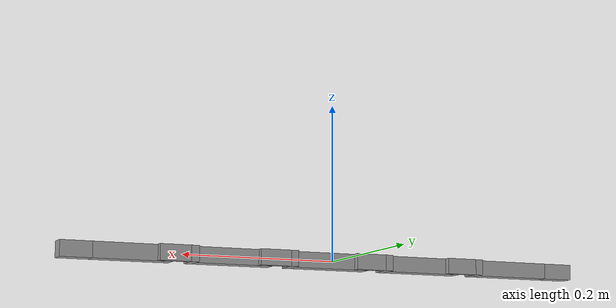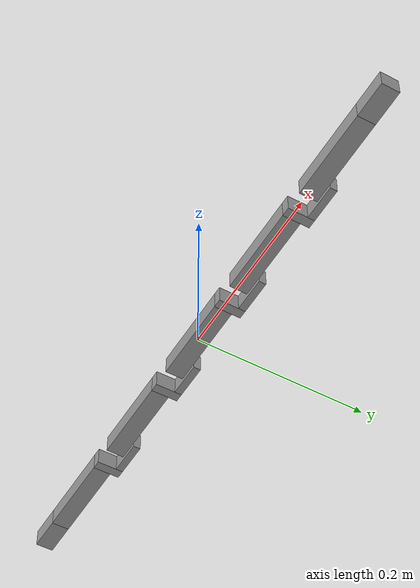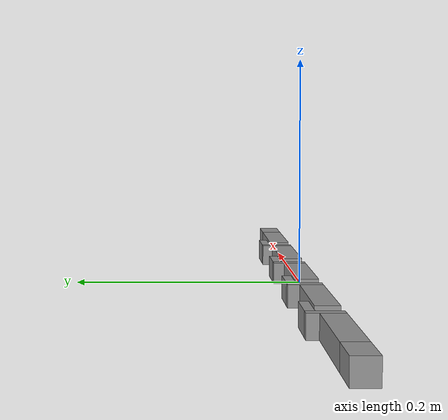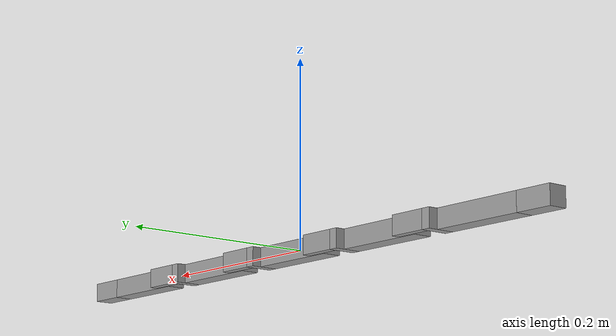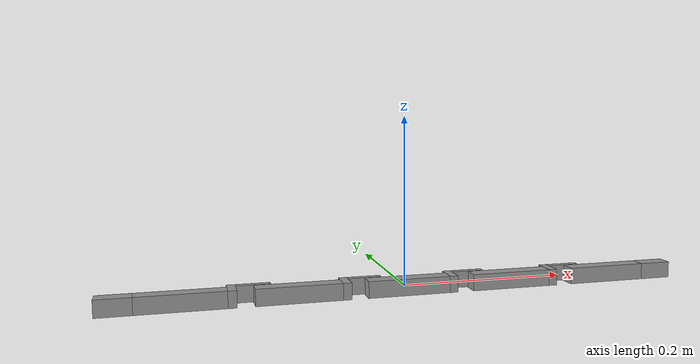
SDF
<?xml version='1.0'?>
<sdf version='1.6'>
  <model name='section_with_jointV3'>
    <link name='link_0'>
      <inertial>
        <mass>1</mass>
        <inertia>
          <ixx>0.166667</ixx>
          <ixy>0</ixy>
          <ixz>0</ixz>
          <iyy>0.166667</iyy>
          <iyz>0</iyz>
          <izz>0.166667</izz>
        </inertia>
        <pose frame=''>0 0 0 0 -0 0</pose>
      </inertial>
      <pose frame=''>-0.326364 -0.001818 0 0 -0 0</pose>
      <gravity>1</gravity>
      <self_collide>0</self_collide>
      <kinematic>0</kinematic>
      <enable_wind>0</enable_wind>
      <visual name='visual'>
        <pose frame=''>0 0 0 0 -0 0</pose>
        <geometry>
          <box>
            <size>0.04 0.02 0.02</size>
          </box>
        </geometry>
        <material>
          <lighting>1</lighting>
          <script>
            <uri>file://media/materials/scripts/gazebo.material</uri>
            <name>Gazebo/Grey</name>
          </script>
          <shader type='pixel'>
            <normal_map>__default__</normal_map>
          </shader>
          <ambient>0.3 0.3 0.3 1</ambient>
          <diffuse>0.7 0.7 0.7 1</diffuse>
          <specular>0.01 0.01 0.01 1</specular>
          <emissive>0 0 0 1</emissive>
        </material>
        <transparency>0</transparency>
        <cast_shadows>1</cast_shadows>
      </visual>
      <collision name='collision'>
        <laser_retro>0</laser_retro>
        <max_contacts>10</max_contacts>
        <pose frame=''>0 0 0 0 -0 0</pose>
        <geometry>
          <box>
            <size>0.04 0.02 0.02</size>
          </box>
        </geometry>
        <surface>
          <friction>
            <ode>
              <mu>1</mu>
              <mu2>1</mu2>
              <fdir1>0 0 0</fdir1>
              <slip1>0</slip1>
              <slip2>0</slip2>
            </ode>
            <torsional>
              <coefficient>1</coefficient>
              <patch_radius>0</patch_radius>
              <surface_radius>0</surface_radius>
              <use_patch_radius>1</use_patch_radius>
              <ode>
                <slip>0</slip>
              </ode>
            </torsional>
          </friction>
          <bounce>
            <restitution_coefficient>0</restitution_coefficient>
            <threshold>1e+06</threshold>
          </bounce>
          <contact>
            <collide_without_contact>0</collide_without_contact>
            <collide_without_contact_bitmask>1</collide_without_contact_bitmask>
            <collide_bitmask>1</collide_bitmask>
            <ode>
              <soft_cfm>0</soft_cfm>
              <soft_erp>0.2</soft_erp>
              <kp>1e+13</kp>
              <kd>1</kd>
              <max_vel>0.01</max_vel>
              <min_depth>0</min_depth>
            </ode>
            <bullet>
              <split_impulse>1</split_impulse>
              <split_impulse_penetration_threshold>-0.01</split_impulse_penetration_threshold>
              <soft_cfm>0</soft_cfm>
              <soft_erp>0.2</soft_erp>
              <kp>1e+13</kp>
              <kd>1</kd>
            </bullet>
          </contact>
        </surface>
      </collision>
    </link>
    <link name='link_1'>
      <inertial>
        <mass>1</mass>
        <inertia>
          <ixx>0.166667</ixx>
          <ixy>0</ixy>
          <ixz>0</ixz>
          <iyy>0.166667</iyy>
          <iyz>0</iyz>
          <izz>0.166667</izz>
        </inertia>
        <pose frame=''>0 0 0 0 -0 0</pose>
      </inertial>
      <pose frame=''>-0.256364 -0.001818 0 0 -0 0</pose>
      <gravity>1</gravity>
      <self_collide>0</self_collide>
      <kinematic>1</kinematic>
      <enable_wind>0</enable_wind>
      <visual name='visual'>
        <pose frame=''>0 0 0 0 -0 0</pose>
        <geometry>
          <box>
            <size>0.1 0.02 0.02</size>
          </box>
        </geometry>
        <material>
          <lighting>1</lighting>
          <script>
            <uri>file://media/materials/scripts/gazebo.material</uri>
            <name>Gazebo/Grey</name>
          </script>
          <shader type='pixel'>
            <normal_map>__default__</normal_map>
          </shader>
          <ambient>0.3 0.3 0.3 1</ambient>
          <diffuse>0.7 0.7 0.7 1</diffuse>
          <specular>0.01 0.01 0.01 1</specular>
          <emissive>0 0 0 1</emissive>
        </material>
        <transparency>0</transparency>
        <cast_shadows>1</cast_shadows>
      </visual>
      <collision name='collision'>
        <laser_retro>0</laser_retro>
        <max_contacts>10</max_contacts>
        <pose frame=''>0 0 0 0 -0 0</pose>
        <geometry>
          <box>
            <size>0.1 0.02 0.02</size>
          </box>
        </geometry>
        <surface>
          <friction>
            <ode>
              <mu>1</mu>
              <mu2>1</mu2>
              <fdir1>0 0 0</fdir1>
              <slip1>0</slip1>
              <slip2>0</slip2>
            </ode>
            <torsional>
              <coefficient>1</coefficient>
              <patch_radius>0</patch_radius>
              <surface_radius>0</surface_radius>
              <use_patch_radius>1</use_patch_radius>
              <ode>
                <slip>0</slip>
              </ode>
            </torsional>
          </friction>
          <bounce>
            <restitution_coefficient>0</restitution_coefficient>
            <threshold>1e+06</threshold>
          </bounce>
          <contact>
            <collide_without_contact>0</collide_without_contact>
            <collide_without_contact_bitmask>1</collide_without_contact_bitmask>
            <collide_bitmask>1</collide_bitmask>
            <ode>
              <soft_cfm>0</soft_cfm>
              <soft_erp>0.2</soft_erp>
              <kp>1e+13</kp>
              <kd>1</kd>
              <max_vel>0.01</max_vel>
              <min_depth>0</min_depth>
            </ode>
            <bullet>
              <split_impulse>1</split_impulse>
              <split_impulse_penetration_threshold>-0.01</split_impulse_penetration_threshold>
              <soft_cfm>0</soft_cfm>
              <soft_erp>0.2</soft_erp>
              <kp>1e+13</kp>
              <kd>1</kd>
            </bullet>
          </contact>
        </surface>
      </collision>
    </link>
    <link name='link_10'>
      <inertial>
        <mass>1</mass>
        <inertia>
          <ixx>0.166667</ixx>
          <ixy>0</ixy>
          <ixz>0</ixz>
          <iyy>0.166667</iyy>
          <iyz>0</iyz>
          <izz>0.166667</izz>
        </inertia>
        <pose frame=''>0 0 0 0 -0 0</pose>
      </inertial>
      <pose frame=''>0.333636 -0.001818 0 0 -0 0</pose>
      <gravity>1</gravity>
      <self_collide>0</self_collide>
      <kinematic>0</kinematic>
      <enable_wind>0</enable_wind>
      <visual name='visual'>
        <pose frame=''>0 0 0 0 -0 0</pose>
        <geometry>
          <box>
            <size>0.04 0.02 0.02</size>
          </box>
        </geometry>
        <material>
          <lighting>1</lighting>
          <script>
            <uri>file://media/materials/scripts/gazebo.material</uri>
            <name>Gazebo/Grey</name>
          </script>
          <shader type='pixel'>
            <normal_map>__default__</normal_map>
          </shader>
          <ambient>0.3 0.3 0.3 1</ambient>
          <diffuse>0.7 0.7 0.7 1</diffuse>
          <specular>0.01 0.01 0.01 1</specular>
          <emissive>0 0 0 1</emissive>
        </material>
        <transparency>0</transparency>
        <cast_shadows>1</cast_shadows>
      </visual>
      <collision name='collision'>
        <laser_retro>0</laser_retro>
        <max_contacts>10</max_contacts>
        <pose frame=''>0 0 0 0 -0 0</pose>
        <geometry>
          <box>
            <size>0.04 0.02 0.02</size>
          </box>
        </geometry>
        <surface>
          <friction>
            <ode>
              <mu>1</mu>
              <mu2>1</mu2>
              <fdir1>0 0 0</fdir1>
              <slip1>0</slip1>
              <slip2>0</slip2>
            </ode>
            <torsional>
              <coefficient>1</coefficient>
              <patch_radius>0</patch_radius>
              <surface_radius>0</surface_radius>
              <use_patch_radius>1</use_patch_radius>
              <ode>
                <slip>0</slip>
              </ode>
            </torsional>
          </friction>
          <bounce>
            <restitution_coefficient>0</restitution_coefficient>
            <threshold>1e+06</threshold>
          </bounce>
          <contact>
            <collide_without_contact>0</collide_without_contact>
            <collide_without_contact_bitmask>1</collide_without_contact_bitmask>
            <collide_bitmask>1</collide_bitmask>
            <ode>
              <soft_cfm>0</soft_cfm>
              <soft_erp>0.2</soft_erp>
              <kp>1e+13</kp>
              <kd>1</kd>
              <max_vel>0.01</max_vel>
              <min_depth>0</min_depth>
            </ode>
            <bullet>
              <split_impulse>1</split_impulse>
              <split_impulse_penetration_threshold>-0.01</split_impulse_penetration_threshold>
              <soft_cfm>0</soft_cfm>
              <soft_erp>0.2</soft_erp>
              <kp>1e+13</kp>
              <kd>1</kd>
            </bullet>
          </contact>
        </surface>
      </collision>
    </link>
    <link name='link_2'>
      <inertial>
        <mass>1</mass>
        <inertia>
          <ixx>0.166667</ixx>
          <ixy>0</ixy>
          <ixz>0</ixz>
          <iyy>0.166667</iyy>
          <iyz>0</iyz>
          <izz>0.166667</izz>
        </inertia>
        <pose frame=''>0 0 0 0 -0 0</pose>
      </inertial>
      <pose frame=''>-0.201364 0.003182 0 0 -0 0</pose>
      <gravity>1</gravity>
      <self_collide>0</self_collide>
      <kinematic>0</kinematic>
      <enable_wind>0</enable_wind>
      <visual name='visual'>
        <pose frame=''>0 0 0 0 -0 0</pose>
        <geometry>
          <box>
            <size>0.01 0.03 0.02</size>
          </box>
        </geometry>
        <material>
          <lighting>1</lighting>
          <script>
            <uri>file://media/materials/scripts/gazebo.material</uri>
            <name>Gazebo/Grey</name>
          </script>
          <shader type='pixel'>
            <normal_map>__default__</normal_map>
          </shader>
          <ambient>0.3 0.3 0.3 1</ambient>
          <diffuse>0.7 0.7 0.7 1</diffuse>
          <specular>0.01 0.01 0.01 1</specular>
          <emissive>0 0 0 1</emissive>
        </material>
        <transparency>0</transparency>
        <cast_shadows>1</cast_shadows>
      </visual>
      <visual name='ModelPreview_2::link_2::visual_1'>
        <pose frame=''>0.025 0.011 0 0 -0 0</pose>
        <geometry>
          <box>
            <size>0.04 0.008 0.02</size>
          </box>
        </geometry>
        <material>
          <lighting>1</lighting>
          <script>
            <uri>file://media/materials/scripts/gazebo.material</uri>
            <name>Gazebo/Grey</name>
          </script>
          <shader type='pixel'>
            <normal_map>__default__</normal_map>
          </shader>
          <ambient>0.3 0.3 0.3 1</ambient>
          <diffuse>0.7 0.7 0.7 1</diffuse>
          <specular>0.01 0.01 0.01 1</specular>
          <emissive>0 0 0 1</emissive>
        </material>
        <transparency>0</transparency>
        <cast_shadows>1</cast_shadows>
      </visual>
      <collision name='collision'>
        <laser_retro>0</laser_retro>
        <max_contacts>10</max_contacts>
        <pose frame=''>0 0 0 0 -0 0</pose>
        <geometry>
          <box>
            <size>0.01 0.03 0.02</size>
          </box>
        </geometry>
        <surface>
          <friction>
            <ode>
              <mu>1</mu>
              <mu2>1</mu2>
              <fdir1>0 0 0</fdir1>
              <slip1>0</slip1>
              <slip2>0</slip2>
            </ode>
            <torsional>
              <coefficient>1</coefficient>
              <patch_radius>0</patch_radius>
              <surface_radius>0</surface_radius>
              <use_patch_radius>1</use_patch_radius>
              <ode>
                <slip>0</slip>
              </ode>
            </torsional>
          </friction>
          <bounce>
            <restitution_coefficient>0</restitution_coefficient>
            <threshold>1e+06</threshold>
          </bounce>
          <contact>
            <collide_without_contact>0</collide_without_contact>
            <collide_without_contact_bitmask>1</collide_without_contact_bitmask>
            <collide_bitmask>1</collide_bitmask>
            <ode>
              <soft_cfm>0</soft_cfm>
              <soft_erp>0.2</soft_erp>
              <kp>1e+13</kp>
              <kd>1</kd>
              <max_vel>0.01</max_vel>
              <min_depth>0</min_depth>
            </ode>
            <bullet>
              <split_impulse>1</split_impulse>
              <split_impulse_penetration_threshold>-0.01</split_impulse_penetration_threshold>
              <soft_cfm>0</soft_cfm>
              <soft_erp>0.2</soft_erp>
              <kp>1e+13</kp>
              <kd>1</kd>
            </bullet>
          </contact>
        </surface>
      </collision>
      <collision name='collision_1'>
        <laser_retro>0</laser_retro>
        <max_contacts>10</max_contacts>
        <pose frame=''>0.025 0.011 0 0 -0 0</pose>
        <geometry>
          <box>
            <size>0.04 0.008 0.02</size>
          </box>
        </geometry>
        <surface>
          <friction>
            <ode>
              <mu>1</mu>
              <mu2>1</mu2>
              <fdir1>0 0 0</fdir1>
              <slip1>0</slip1>
              <slip2>0</slip2>
            </ode>
            <torsional>
              <coefficient>1</coefficient>
              <patch_radius>0</patch_radius>
              <surface_radius>0</surface_radius>
              <use_patch_radius>1</use_patch_radius>
              <ode>
                <slip>0</slip>
              </ode>
            </torsional>
          </friction>
          <bounce>
            <restitution_coefficient>0</restitution_coefficient>
            <threshold>1e+06</threshold>
          </bounce>
          <contact>
            <collide_without_contact>0</collide_without_contact>
            <collide_without_contact_bitmask>1</collide_without_contact_bitmask>
            <collide_bitmask>1</collide_bitmask>
            <ode>
              <soft_cfm>0</soft_cfm>
              <soft_erp>0.2</soft_erp>
              <kp>1e+13</kp>
              <kd>1</kd>
              <max_vel>0.01</max_vel>
              <min_depth>0</min_depth>
            </ode>
            <bullet>
              <split_impulse>1</split_impulse>
              <split_impulse_penetration_threshold>-0.01</split_impulse_penetration_threshold>
              <soft_cfm>0</soft_cfm>
              <soft_erp>0.2</soft_erp>
              <kp>1e+13</kp>
              <kd>1</kd>
            </bullet>
          </contact>
        </surface>
      </collision>
    </link>
    <link name='link_3'>
      <inertial>
        <mass>1</mass>
        <inertia>
          <ixx>0.166667</ixx>
          <ixy>0</ixy>
          <ixz>0</ixz>
          <iyy>0.166667</iyy>
          <iyz>0</iyz>
          <izz>0.166667</izz>
        </inertia>
        <pose frame=''>0 0 0 0 -0 0</pose>
      </inertial>
      <pose frame=''>-0.126364 -0.001818 0 0 -0 0</pose>
      <gravity>1</gravity>
      <self_collide>0</self_collide>
      <kinematic>0</kinematic>
      <enable_wind>0</enable_wind>
      <visual name='visual'>
        <pose frame=''>0 0 0 0 -0 0</pose>
        <geometry>
          <box>
            <size>0.1 0.02 0.02</size>
          </box>
        </geometry>
        <material>
          <lighting>1</lighting>
          <script>
            <uri>file://media/materials/scripts/gazebo.material</uri>
            <name>Gazebo/Grey</name>
          </script>
          <shader type='pixel'>
            <normal_map>__default__</normal_map>
          </shader>
          <ambient>0.3 0.3 0.3 1</ambient>
          <diffuse>0.7 0.7 0.7 1</diffuse>
          <specular>0.01 0.01 0.01 1</specular>
          <emissive>0 0 0 1</emissive>
        </material>
        <transparency>0</transparency>
        <cast_shadows>1</cast_shadows>
      </visual>
      <collision name='collision'>
        <laser_retro>0</laser_retro>
        <max_contacts>10</max_contacts>
        <pose frame=''>0 0 0 0 -0 0</pose>
        <geometry>
          <box>
            <size>0.1 0.02 0.02</size>
          </box>
        </geometry>
        <surface>
          <friction>
            <ode>
              <mu>1</mu>
              <mu2>1</mu2>
              <fdir1>0 0 0</fdir1>
              <slip1>0</slip1>
              <slip2>0</slip2>
            </ode>
            <torsional>
              <coefficient>1</coefficient>
              <patch_radius>0</patch_radius>
              <surface_radius>0</surface_radius>
              <use_patch_radius>1</use_patch_radius>
              <ode>
                <slip>0</slip>
              </ode>
            </torsional>
          </friction>
          <bounce>
            <restitution_coefficient>0</restitution_coefficient>
            <threshold>1e+06</threshold>
          </bounce>
          <contact>
            <collide_without_contact>0</collide_without_contact>
            <collide_without_contact_bitmask>1</collide_without_contact_bitmask>
            <collide_bitmask>1</collide_bitmask>
            <ode>
              <soft_cfm>0</soft_cfm>
              <soft_erp>0.2</soft_erp>
              <kp>1e+13</kp>
              <kd>1</kd>
              <max_vel>0.01</max_vel>
              <min_depth>0</min_depth>
            </ode>
            <bullet>
              <split_impulse>1</split_impulse>
              <split_impulse_penetration_threshold>-0.01</split_impulse_penetration_threshold>
              <soft_cfm>0</soft_cfm>
              <soft_erp>0.2</soft_erp>
              <kp>1e+13</kp>
              <kd>1</kd>
            </bullet>
          </contact>
        </surface>
      </collision>
    </link>
    <link name='link_4'>
      <inertial>
        <mass>1</mass>
        <inertia>
          <ixx>0.166667</ixx>
          <ixy>0</ixy>
          <ixz>0</ixz>
          <iyy>0.166667</iyy>
          <iyz>0</iyz>
          <izz>0.166667</izz>
        </inertia>
        <pose frame=''>0 0 0 0 -0 0</pose>
      </inertial>
      <pose frame=''>-0.071364 0.003182 0 0 -0 0</pose>
      <gravity>1</gravity>
      <self_collide>0</self_collide>
      <kinematic>0</kinematic>
      <enable_wind>0</enable_wind>
      <visual name='visual'>
        <pose frame=''>0 0 0 0 -0 0</pose>
        <geometry>
          <box>
            <size>0.01 0.03 0.02</size>
          </box>
        </geometry>
        <material>
          <lighting>1</lighting>
          <script>
            <uri>file://media/materials/scripts/gazebo.material</uri>
            <name>Gazebo/Grey</name>
          </script>
          <shader type='pixel'>
            <normal_map>__default__</normal_map>
          </shader>
          <ambient>0.3 0.3 0.3 1</ambient>
          <diffuse>0.7 0.7 0.7 1</diffuse>
          <specular>0.01 0.01 0.01 1</specular>
          <emissive>0 0 0 1</emissive>
        </material>
        <transparency>0</transparency>
        <cast_shadows>1</cast_shadows>
      </visual>
      <visual name='ModelPreview_2::link_4::visual_1'>
        <pose frame=''>0.025 0.011 0 0 -0 0</pose>
        <geometry>
          <box>
            <size>0.04 0.008 0.02</size>
          </box>
        </geometry>
        <material>
          <lighting>1</lighting>
          <script>
            <uri>file://media/materials/scripts/gazebo.material</uri>
            <name>Gazebo/Grey</name>
          </script>
          <shader type='pixel'>
            <normal_map>__default__</normal_map>
          </shader>
          <ambient>0.3 0.3 0.3 1</ambient>
          <diffuse>0.7 0.7 0.7 1</diffuse>
          <specular>0.01 0.01 0.01 1</specular>
          <emissive>0 0 0 1</emissive>
        </material>
        <transparency>0</transparency>
        <cast_shadows>1</cast_shadows>
      </visual>
      <collision name='collision'>
        <laser_retro>0</laser_retro>
        <max_contacts>10</max_contacts>
        <pose frame=''>0 0 0 0 -0 0</pose>
        <geometry>
          <box>
            <size>0.01 0.03 0.02</size>
          </box>
        </geometry>
        <surface>
          <friction>
            <ode>
              <mu>1</mu>
              <mu2>1</mu2>
              <fdir1>0 0 0</fdir1>
              <slip1>0</slip1>
              <slip2>0</slip2>
            </ode>
            <torsional>
              <coefficient>1</coefficient>
              <patch_radius>0</patch_radius>
              <surface_radius>0</surface_radius>
              <use_patch_radius>1</use_patch_radius>
              <ode>
                <slip>0</slip>
              </ode>
            </torsional>
          </friction>
          <bounce>
            <restitution_coefficient>0</restitution_coefficient>
            <threshold>1e+06</threshold>
          </bounce>
          <contact>
            <collide_without_contact>0</collide_without_contact>
            <collide_without_contact_bitmask>1</collide_without_contact_bitmask>
            <collide_bitmask>1</collide_bitmask>
            <ode>
              <soft_cfm>0</soft_cfm>
              <soft_erp>0.2</soft_erp>
              <kp>1e+13</kp>
              <kd>1</kd>
              <max_vel>0.01</max_vel>
              <min_depth>0</min_depth>
            </ode>
            <bullet>
              <split_impulse>1</split_impulse>
              <split_impulse_penetration_threshold>-0.01</split_impulse_penetration_threshold>
              <soft_cfm>0</soft_cfm>
              <soft_erp>0.2</soft_erp>
              <kp>1e+13</kp>
              <kd>1</kd>
            </bullet>
          </contact>
        </surface>
      </collision>
      <collision name='collision_1'>
        <laser_retro>0</laser_retro>
        <max_contacts>10</max_contacts>
        <pose frame=''>0.025 0.011 0 0 -0 0</pose>
        <geometry>
          <box>
            <size>0.04 0.008 0.02</size>
          </box>
        </geometry>
        <surface>
          <friction>
            <ode>
              <mu>1</mu>
              <mu2>1</mu2>
              <fdir1>0 0 0</fdir1>
              <slip1>0</slip1>
              <slip2>0</slip2>
            </ode>
            <torsional>
              <coefficient>1</coefficient>
              <patch_radius>0</patch_radius>
              <surface_radius>0</surface_radius>
              <use_patch_radius>1</use_patch_radius>
              <ode>
                <slip>0</slip>
              </ode>
            </torsional>
          </friction>
          <bounce>
            <restitution_coefficient>0</restitution_coefficient>
            <threshold>1e+06</threshold>
          </bounce>
          <contact>
            <collide_without_contact>0</collide_without_contact>
            <collide_without_contact_bitmask>1</collide_without_contact_bitmask>
            <collide_bitmask>1</collide_bitmask>
            <ode>
              <soft_cfm>0</soft_cfm>
              <soft_erp>0.2</soft_erp>
              <kp>1e+13</kp>
              <kd>1</kd>
              <max_vel>0.01</max_vel>
              <min_depth>0</min_depth>
            </ode>
            <bullet>
              <split_impulse>1</split_impulse>
              <split_impulse_penetration_threshold>-0.01</split_impulse_penetration_threshold>
              <soft_cfm>0</soft_cfm>
              <soft_erp>0.2</soft_erp>
              <kp>1e+13</kp>
              <kd>1</kd>
            </bullet>
          </contact>
        </surface>
      </collision>
    </link>
    <link name='link_5'>
      <inertial>
        <mass>1</mass>
        <inertia>
          <ixx>0.166667</ixx>
          <ixy>0</ixy>
          <ixz>0</ixz>
          <iyy>0.166667</iyy>
          <iyz>0</iyz>
          <izz>0.166667</izz>
        </inertia>
        <pose frame=''>0 0 0 0 -0 0</pose>
      </inertial>
      <pose frame=''>0.003636 -0.001818 0 0 -0 0</pose>
      <gravity>1</gravity>
      <self_collide>0</self_collide>
      <kinematic>0</kinematic>
      <enable_wind>0</enable_wind>
      <visual name='visual'>
        <pose frame=''>0 0 0 0 -0 0</pose>
        <geometry>
          <box>
            <size>0.1 0.02 0.02</size>
          </box>
        </geometry>
        <material>
          <lighting>1</lighting>
          <script>
            <uri>file://media/materials/scripts/gazebo.material</uri>
            <name>Gazebo/Grey</name>
          </script>
          <shader type='pixel'>
            <normal_map>__default__</normal_map>
          </shader>
          <ambient>0.3 0.3 0.3 1</ambient>
          <diffuse>0.7 0.7 0.7 1</diffuse>
          <specular>0.01 0.01 0.01 1</specular>
          <emissive>0 0 0 1</emissive>
        </material>
        <transparency>0</transparency>
        <cast_shadows>1</cast_shadows>
      </visual>
      <collision name='collision'>
        <laser_retro>0</laser_retro>
        <max_contacts>10</max_contacts>
        <pose frame=''>0 0 0 0 -0 0</pose>
        <geometry>
          <box>
            <size>0.1 0.02 0.02</size>
          </box>
        </geometry>
        <surface>
          <friction>
            <ode>
              <mu>1</mu>
              <mu2>1</mu2>
              <fdir1>0 0 0</fdir1>
              <slip1>0</slip1>
              <slip2>0</slip2>
            </ode>
            <torsional>
              <coefficient>1</coefficient>
              <patch_radius>0</patch_radius>
              <surface_radius>0</surface_radius>
              <use_patch_radius>1</use_patch_radius>
              <ode>
                <slip>0</slip>
              </ode>
            </torsional>
          </friction>
          <bounce>
            <restitution_coefficient>0</restitution_coefficient>
            <threshold>1e+06</threshold>
          </bounce>
          <contact>
            <collide_without_contact>0</collide_without_contact>
            <collide_without_contact_bitmask>1</collide_without_contact_bitmask>
            <collide_bitmask>1</collide_bitmask>
            <ode>
              <soft_cfm>0</soft_cfm>
              <soft_erp>0.2</soft_erp>
              <kp>1e+13</kp>
              <kd>1</kd>
              <max_vel>0.01</max_vel>
              <min_depth>0</min_depth>
            </ode>
            <bullet>
              <split_impulse>1</split_impulse>
              <split_impulse_penetration_threshold>-0.01</split_impulse_penetration_threshold>
              <soft_cfm>0</soft_cfm>
              <soft_erp>0.2</soft_erp>
              <kp>1e+13</kp>
              <kd>1</kd>
            </bullet>
          </contact>
        </surface>
      </collision>
    </link>
    <link name='link_6'>
      <inertial>
        <mass>1</mass>
        <inertia>
          <ixx>0.166667</ixx>
          <ixy>0</ixy>
          <ixz>0</ixz>
          <iyy>0.166667</iyy>
          <iyz>0</iyz>
          <izz>0.166667</izz>
        </inertia>
        <pose frame=''>0 0 0 0 -0 0</pose>
      </inertial>
      <pose frame=''>0.058636 0.003182 0 0 -0 0</pose>
      <gravity>1</gravity>
      <self_collide>0</self_collide>
      <kinematic>0</kinematic>
      <enable_wind>0</enable_wind>
      <visual name='visual'>
        <pose frame=''>0 0 0 0 -0 0</pose>
        <geometry>
          <box>
            <size>0.01 0.03 0.02</size>
          </box>
        </geometry>
        <material>
          <lighting>1</lighting>
          <script>
            <uri>file://media/materials/scripts/gazebo.material</uri>
            <name>Gazebo/Grey</name>
          </script>
          <shader type='pixel'>
            <normal_map>__default__</normal_map>
          </shader>
          <ambient>0.3 0.3 0.3 1</ambient>
          <diffuse>0.7 0.7 0.7 1</diffuse>
          <specular>0.01 0.01 0.01 1</specular>
          <emissive>0 0 0 1</emissive>
        </material>
        <transparency>0</transparency>
        <cast_shadows>1</cast_shadows>
      </visual>
      <visual name='ModelPreview_2::link_6::visual_1'>
        <pose frame=''>0.025 0.011 0 0 -0 0</pose>
        <geometry>
          <box>
            <size>0.04 0.008 0.02</size>
          </box>
        </geometry>
        <material>
          <lighting>1</lighting>
          <script>
            <uri>file://media/materials/scripts/gazebo.material</uri>
            <name>Gazebo/Grey</name>
          </script>
          <shader type='pixel'>
            <normal_map>__default__</normal_map>
          </shader>
          <ambient>0.3 0.3 0.3 1</ambient>
          <diffuse>0.7 0.7 0.7 1</diffuse>
          <specular>0.01 0.01 0.01 1</specular>
          <emissive>0 0 0 1</emissive>
        </material>
        <transparency>0</transparency>
        <cast_shadows>1</cast_shadows>
      </visual>
      <collision name='collision'>
        <laser_retro>0</laser_retro>
        <max_contacts>10</max_contacts>
        <pose frame=''>0 0 0 0 -0 0</pose>
        <geometry>
          <box>
            <size>0.01 0.03 0.02</size>
          </box>
        </geometry>
        <surface>
          <friction>
            <ode>
              <mu>1</mu>
              <mu2>1</mu2>
              <fdir1>0 0 0</fdir1>
              <slip1>0</slip1>
              <slip2>0</slip2>
            </ode>
            <torsional>
              <coefficient>1</coefficient>
              <patch_radius>0</patch_radius>
              <surface_radius>0</surface_radius>
              <use_patch_radius>1</use_patch_radius>
              <ode>
                <slip>0</slip>
              </ode>
            </torsional>
          </friction>
          <bounce>
            <restitution_coefficient>0</restitution_coefficient>
            <threshold>1e+06</threshold>
          </bounce>
          <contact>
            <collide_without_contact>0</collide_without_contact>
            <collide_without_contact_bitmask>1</collide_without_contact_bitmask>
            <collide_bitmask>1</collide_bitmask>
            <ode>
              <soft_cfm>0</soft_cfm>
              <soft_erp>0.2</soft_erp>
              <kp>1e+13</kp>
              <kd>1</kd>
              <max_vel>0.01</max_vel>
              <min_depth>0</min_depth>
            </ode>
            <bullet>
              <split_impulse>1</split_impulse>
              <split_impulse_penetration_threshold>-0.01</split_impulse_penetration_threshold>
              <soft_cfm>0</soft_cfm>
              <soft_erp>0.2</soft_erp>
              <kp>1e+13</kp>
              <kd>1</kd>
            </bullet>
          </contact>
        </surface>
      </collision>
      <collision name='collision_1'>
        <laser_retro>0</laser_retro>
        <max_contacts>10</max_contacts>
        <pose frame=''>0.025 0.011 0 0 -0 0</pose>
        <geometry>
          <box>
            <size>0.04 0.008 0.02</size>
          </box>
        </geometry>
        <surface>
          <friction>
            <ode>
              <mu>1</mu>
              <mu2>1</mu2>
              <fdir1>0 0 0</fdir1>
              <slip1>0</slip1>
              <slip2>0</slip2>
            </ode>
            <torsional>
              <coefficient>1</coefficient>
              <patch_radius>0</patch_radius>
              <surface_radius>0</surface_radius>
              <use_patch_radius>1</use_patch_radius>
              <ode>
                <slip>0</slip>
              </ode>
            </torsional>
          </friction>
          <bounce>
            <restitution_coefficient>0</restitution_coefficient>
            <threshold>1e+06</threshold>
          </bounce>
          <contact>
            <collide_without_contact>0</collide_without_contact>
            <collide_without_contact_bitmask>1</collide_without_contact_bitmask>
            <collide_bitmask>1</collide_bitmask>
            <ode>
              <soft_cfm>0</soft_cfm>
              <soft_erp>0.2</soft_erp>
              <kp>1e+13</kp>
              <kd>1</kd>
              <max_vel>0.01</max_vel>
              <min_depth>0</min_depth>
            </ode>
            <bullet>
              <split_impulse>1</split_impulse>
              <split_impulse_penetration_threshold>-0.01</split_impulse_penetration_threshold>
              <soft_cfm>0</soft_cfm>
              <soft_erp>0.2</soft_erp>
              <kp>1e+13</kp>
              <kd>1</kd>
            </bullet>
          </contact>
        </surface>
      </collision>
    </link>
    <link name='link_7'>
      <inertial>
        <mass>1</mass>
        <inertia>
          <ixx>0.166667</ixx>
          <ixy>0</ixy>
          <ixz>0</ixz>
          <iyy>0.166667</iyy>
          <iyz>0</iyz>
          <izz>0.166667</izz>
        </inertia>
        <pose frame=''>0 0 0 0 -0 0</pose>
      </inertial>
      <pose frame=''>0.133636 -0.001818 0 0 -0 0</pose>
      <gravity>1</gravity>
      <self_collide>0</self_collide>
      <kinematic>0</kinematic>
      <enable_wind>0</enable_wind>
      <visual name='visual'>
        <pose frame=''>0 0 0 0 -0 0</pose>
        <geometry>
          <box>
            <size>0.1 0.02 0.02</size>
          </box>
        </geometry>
        <material>
          <lighting>1</lighting>
          <script>
            <uri>file://media/materials/scripts/gazebo.material</uri>
            <name>Gazebo/Grey</name>
          </script>
          <shader type='pixel'>
            <normal_map>__default__</normal_map>
          </shader>
          <ambient>0.3 0.3 0.3 1</ambient>
          <diffuse>0.7 0.7 0.7 1</diffuse>
          <specular>0.01 0.01 0.01 1</specular>
          <emissive>0 0 0 1</emissive>
        </material>
        <transparency>0</transparency>
        <cast_shadows>1</cast_shadows>
      </visual>
      <collision name='collision'>
        <laser_retro>0</laser_retro>
        <max_contacts>10</max_contacts>
        <pose frame=''>0 0 0 0 -0 0</pose>
        <geometry>
          <box>
            <size>0.1 0.02 0.02</size>
          </box>
        </geometry>
        <surface>
          <friction>
            <ode>
              <mu>1</mu>
              <mu2>1</mu2>
              <fdir1>0 0 0</fdir1>
              <slip1>0</slip1>
              <slip2>0</slip2>
            </ode>
            <torsional>
              <coefficient>1</coefficient>
              <patch_radius>0</patch_radius>
              <surface_radius>0</surface_radius>
              <use_patch_radius>1</use_patch_radius>
              <ode>
                <slip>0</slip>
              </ode>
            </torsional>
          </friction>
          <bounce>
            <restitution_coefficient>0</restitution_coefficient>
            <threshold>1e+06</threshold>
          </bounce>
          <contact>
            <collide_without_contact>0</collide_without_contact>
            <collide_without_contact_bitmask>1</collide_without_contact_bitmask>
            <collide_bitmask>1</collide_bitmask>
            <ode>
              <soft_cfm>0</soft_cfm>
              <soft_erp>0.2</soft_erp>
              <kp>1e+13</kp>
              <kd>1</kd>
              <max_vel>0.01</max_vel>
              <min_depth>0</min_depth>
            </ode>
            <bullet>
              <split_impulse>1</split_impulse>
              <split_impulse_penetration_threshold>-0.01</split_impulse_penetration_threshold>
              <soft_cfm>0</soft_cfm>
              <soft_erp>0.2</soft_erp>
              <kp>1e+13</kp>
              <kd>1</kd>
            </bullet>
          </contact>
        </surface>
      </collision>
    </link>
    <link name='link_8'>
      <inertial>
        <mass>1</mass>
        <inertia>
          <ixx>0.166667</ixx>
          <ixy>0</ixy>
          <ixz>0</ixz>
          <iyy>0.166667</iyy>
          <iyz>0</iyz>
          <izz>0.166667</izz>
        </inertia>
        <pose frame=''>0 0 0 0 -0 0</pose>
      </inertial>
      <pose frame=''>0.188636 0.003182 0 0 -0 0</pose>
      <gravity>1</gravity>
      <self_collide>0</self_collide>
      <kinematic>0</kinematic>
      <enable_wind>0</enable_wind>
      <visual name='visual'>
        <pose frame=''>0 0 0 0 -0 0</pose>
        <geometry>
          <box>
            <size>0.01 0.03 0.02</size>
          </box>
        </geometry>
        <material>
          <lighting>1</lighting>
          <script>
            <uri>file://media/materials/scripts/gazebo.material</uri>
            <name>Gazebo/Grey</name>
          </script>
          <shader type='pixel'>
            <normal_map>__default__</normal_map>
          </shader>
          <ambient>0.3 0.3 0.3 1</ambient>
          <diffuse>0.7 0.7 0.7 1</diffuse>
          <specular>0.01 0.01 0.01 1</specular>
          <emissive>0 0 0 1</emissive>
        </material>
        <transparency>0</transparency>
        <cast_shadows>1</cast_shadows>
      </visual>
      <visual name='ModelPreview_2::link_8::visual_1'>
        <pose frame=''>0.025 0.011 0 0 -0 0</pose>
        <geometry>
          <box>
            <size>0.04 0.008 0.02</size>
          </box>
        </geometry>
        <material>
          <lighting>1</lighting>
          <script>
            <uri>file://media/materials/scripts/gazebo.material</uri>
            <name>Gazebo/Grey</name>
          </script>
          <shader type='pixel'>
            <normal_map>__default__</normal_map>
          </shader>
          <ambient>0.3 0.3 0.3 1</ambient>
          <diffuse>0.7 0.7 0.7 1</diffuse>
          <specular>0.01 0.01 0.01 1</specular>
          <emissive>0 0 0 1</emissive>
        </material>
        <transparency>0</transparency>
        <cast_shadows>1</cast_shadows>
      </visual>
      <collision name='collision'>
        <laser_retro>0</laser_retro>
        <max_contacts>10</max_contacts>
        <pose frame=''>0 0 0 0 -0 0</pose>
        <geometry>
          <box>
            <size>0.01 0.03 0.02</size>
          </box>
        </geometry>
        <surface>
          <friction>
            <ode>
              <mu>1</mu>
              <mu2>1</mu2>
              <fdir1>0 0 0</fdir1>
              <slip1>0</slip1>
              <slip2>0</slip2>
            </ode>
            <torsional>
              <coefficient>1</coefficient>
              <patch_radius>0</patch_radius>
              <surface_radius>0</surface_radius>
              <use_patch_radius>1</use_patch_radius>
              <ode>
                <slip>0</slip>
              </ode>
            </torsional>
          </friction>
          <bounce>
            <restitution_coefficient>0</restitution_coefficient>
            <threshold>1e+06</threshold>
          </bounce>
          <contact>
            <collide_without_contact>0</collide_without_contact>
            <collide_without_contact_bitmask>1</collide_without_contact_bitmask>
            <collide_bitmask>1</collide_bitmask>
            <ode>
              <soft_cfm>0</soft_cfm>
              <soft_erp>0.2</soft_erp>
              <kp>1e+13</kp>
              <kd>1</kd>
              <max_vel>0.01</max_vel>
              <min_depth>0</min_depth>
            </ode>
            <bullet>
              <split_impulse>1</split_impulse>
              <split_impulse_penetration_threshold>-0.01</split_impulse_penetration_threshold>
              <soft_cfm>0</soft_cfm>
              <soft_erp>0.2</soft_erp>
              <kp>1e+13</kp>
              <kd>1</kd>
            </bullet>
          </contact>
        </surface>
      </collision>
      <collision name='collision_2'>
        <laser_retro>0</laser_retro>
        <max_contacts>10</max_contacts>
        <pose frame=''>0.025 0.011 0 0 -0 0</pose>
        <geometry>
          <box>
            <size>0.04 0.008 0.02</size>
          </box>
        </geometry>
        <surface>
          <friction>
            <ode>
              <mu>1</mu>
              <mu2>1</mu2>
              <fdir1>0 0 0</fdir1>
              <slip1>0</slip1>
              <slip2>0</slip2>
            </ode>
            <torsional>
              <coefficient>1</coefficient>
              <patch_radius>0</patch_radius>
              <surface_radius>0</surface_radius>
              <use_patch_radius>1</use_patch_radius>
              <ode>
                <slip>0</slip>
              </ode>
            </torsional>
          </friction>
          <bounce>
            <restitution_coefficient>0</restitution_coefficient>
            <threshold>1e+06</threshold>
          </bounce>
          <contact>
            <collide_without_contact>0</collide_without_contact>
            <collide_without_contact_bitmask>1</collide_without_contact_bitmask>
            <collide_bitmask>1</collide_bitmask>
            <ode>
              <soft_cfm>0</soft_cfm>
              <soft_erp>0.2</soft_erp>
              <kp>1e+13</kp>
              <kd>1</kd>
              <max_vel>0.01</max_vel>
              <min_depth>0</min_depth>
            </ode>
            <bullet>
              <split_impulse>1</split_impulse>
              <split_impulse_penetration_threshold>-0.01</split_impulse_penetration_threshold>
              <soft_cfm>0</soft_cfm>
              <soft_erp>0.2</soft_erp>
              <kp>1e+13</kp>
              <kd>1</kd>
            </bullet>
          </contact>
        </surface>
      </collision>
    </link>
    <link name='link_9'>
      <inertial>
        <mass>1</mass>
        <inertia>
          <ixx>0.166667</ixx>
          <ixy>0</ixy>
          <ixz>0</ixz>
          <iyy>0.166667</iyy>
          <iyz>0</iyz>
          <izz>0.166667</izz>
        </inertia>
        <pose frame=''>0 0 0 0 -0 0</pose>
      </inertial>
      <pose frame=''>0.263636 -0.001818 0 0 -0 0</pose>
      <gravity>1</gravity>
      <self_collide>0</self_collide>
      <kinematic>0</kinematic>
      <enable_wind>0</enable_wind>
      <visual name='visual'>
        <pose frame=''>0 0 0 0 -0 0</pose>
        <geometry>
          <box>
            <size>0.1 0.02 0.02</size>
          </box>
        </geometry>
        <material>
          <lighting>1</lighting>
          <script>
            <uri>file://media/materials/scripts/gazebo.material</uri>
            <name>Gazebo/Grey</name>
          </script>
          <shader type='pixel'>
            <normal_map>__default__</normal_map>
          </shader>
          <ambient>0.3 0.3 0.3 1</ambient>
          <diffuse>0.7 0.7 0.7 1</diffuse>
          <specular>0.01 0.01 0.01 1</specular>
          <emissive>0 0 0 1</emissive>
        </material>
        <transparency>0</transparency>
        <cast_shadows>1</cast_shadows>
      </visual>
      <collision name='collision'>
        <laser_retro>0</laser_retro>
        <max_contacts>10</max_contacts>
        <pose frame=''>0 0 0 0 -0 0</pose>
        <geometry>
          <box>
            <size>0.1 0.02 0.02</size>
          </box>
        </geometry>
        <surface>
          <friction>
            <ode>
              <mu>1</mu>
              <mu2>1</mu2>
              <fdir1>0 0 0</fdir1>
              <slip1>0</slip1>
              <slip2>0</slip2>
            </ode>
            <torsional>
              <coefficient>1</coefficient>
              <patch_radius>0</patch_radius>
              <surface_radius>0</surface_radius>
              <use_patch_radius>1</use_patch_radius>
              <ode>
                <slip>0</slip>
              </ode>
            </torsional>
          </friction>
          <bounce>
            <restitution_coefficient>0</restitution_coefficient>
            <threshold>1e+06</threshold>
          </bounce>
          <contact>
            <collide_without_contact>0</collide_without_contact>
            <collide_without_contact_bitmask>1</collide_without_contact_bitmask>
            <collide_bitmask>1</collide_bitmask>
            <ode>
              <soft_cfm>0</soft_cfm>
              <soft_erp>0.2</soft_erp>
              <kp>1e+13</kp>
              <kd>1</kd>
              <max_vel>0.01</max_vel>
              <min_depth>0</min_depth>
            </ode>
            <bullet>
              <split_impulse>1</split_impulse>
              <split_impulse_penetration_threshold>-0.01</split_impulse_penetration_threshold>
              <soft_cfm>0</soft_cfm>
              <soft_erp>0.2</soft_erp>
              <kp>1e+13</kp>
              <kd>1</kd>
            </bullet>
          </contact>
        </surface>
      </collision>
    </link>
    <joint name='link_0_JOINT_1' type='revolute'>
      <parent>link_0</parent>
      <child>link_1</child>
      <pose frame=''>-0.05 0 0 0 -0 0</pose>
      <axis>
        <xyz>1 0 0</xyz>
        <use_parent_model_frame>0</use_parent_model_frame>
        <limit>
          <lower>-1.79769e+308</lower>
          <upper>1.79769e+308</upper>
          <effort>-1</effort>
          <velocity>-1</velocity>
        </limit>
        <dynamics>
          <spring_reference>0</spring_reference>
          <spring_stiffness>0</spring_stiffness>
          <damping>0</damping>
        </dynamics>
      </axis>
      <physics>
        <ode>
          <limit>
            <cfm>0</cfm>
            <erp>0.2</erp>
          </limit>
          <suspension>
            <cfm>0</cfm>
            <erp>0.2</erp>
          </suspension>
        </ode>
      </physics>
    </joint>
    <joint name='link_10_JOINT_10' type='revolute'>
      <parent>link_10</parent>
      <child>link_9</child>
      <pose frame=''>0.05 0 0 0 -0 0</pose>
      <axis>
        <xyz>1 0 0</xyz>
        <use_parent_model_frame>0</use_parent_model_frame>
        <limit>
          <lower>-1.79769e+308</lower>
          <upper>1.79769e+308</upper>
          <effort>-1</effort>
          <velocity>-1</velocity>
        </limit>
        <dynamics>
          <spring_reference>0</spring_reference>
          <spring_stiffness>0</spring_stiffness>
          <damping>0</damping>
        </dynamics>
      </axis>
      <physics>
        <ode>
          <limit>
            <cfm>0</cfm>
            <erp>0.2</erp>
          </limit>
          <suspension>
            <cfm>0</cfm>
            <erp>0.2</erp>
          </suspension>
        </ode>
      </physics>
    </joint>
    <joint name='link_1_JOINT_2' type='fixed'>
      <parent>link_1</parent>
      <child>link_2</child>
      <pose frame=''>-0.005 0 0 0 -0 0</pose>
      <physics>
        <ode>
          <limit>
            <cfm>0</cfm>
            <erp>0.2</erp>
          </limit>
          <suspension>
            <cfm>0</cfm>
            <erp>0.2</erp>
          </suspension>
        </ode>
      </physics>
    </joint>
    <joint name='link_2_JOINT_3' type='revolute'>
      <parent>link_2</parent>
      <child>link_3</child>
      <pose frame=''>-0.04 0 0 0 -0 0</pose>
      <axis>
        <xyz>0 1 0</xyz>
        <use_parent_model_frame>0</use_parent_model_frame>
        <limit>
          <lower>-1.79769e+308</lower>
          <upper>1.79769e+308</upper>
          <effort>-1</effort>
          <velocity>-1</velocity>
        </limit>
        <dynamics>
          <spring_reference>0</spring_reference>
          <spring_stiffness>0</spring_stiffness>
          <damping>0</damping>
        </dynamics>
      </axis>
      <physics>
        <ode>
          <limit>
            <cfm>0</cfm>
            <erp>0.2</erp>
          </limit>
          <suspension>
            <cfm>0</cfm>
            <erp>0.2</erp>
          </suspension>
        </ode>
      </physics>
    </joint>
    <joint name='link_3_JOINT_4' type='fixed'>
      <parent>link_3</parent>
      <child>link_4</child>
      <pose frame=''>-0.005 0 0 0 -0 0</pose>
      <physics>
        <ode>
          <limit>
            <cfm>0</cfm>
            <erp>0.2</erp>
          </limit>
          <suspension>
            <cfm>0</cfm>
            <erp>0.2</erp>
          </suspension>
        </ode>
      </physics>
    </joint>
    <joint name='link_4_JOINT_5' type='revolute'>
      <parent>link_4</parent>
      <child>link_5</child>
      <pose frame=''>-0.04 0 0 0 -0 0</pose>
      <axis>
        <xyz>0 1 0</xyz>
        <use_parent_model_frame>0</use_parent_model_frame>
        <limit>
          <lower>-1.79769e+308</lower>
          <upper>1.79769e+308</upper>
          <effort>-1</effort>
          <velocity>-1</velocity>
        </limit>
        <dynamics>
          <spring_reference>0</spring_reference>
          <spring_stiffness>0</spring_stiffness>
          <damping>0</damping>
        </dynamics>
      </axis>
      <physics>
        <ode>
          <limit>
            <cfm>0</cfm>
            <erp>0.2</erp>
          </limit>
          <suspension>
            <cfm>0</cfm>
            <erp>0.2</erp>
          </suspension>
        </ode>
      </physics>
    </joint>
    <joint name='link_5_JOINT_6' type='fixed'>
      <parent>link_5</parent>
      <child>link_6</child>
      <pose frame=''>-0.005 0 0 0 -0 0</pose>
      <physics>
        <ode>
          <limit>
            <cfm>0</cfm>
            <erp>0.2</erp>
          </limit>
          <suspension>
            <cfm>0</cfm>
            <erp>0.2</erp>
          </suspension>
        </ode>
      </physics>
    </joint>
    <joint name='link_6_JOINT_7' type='revolute'>
      <parent>link_6</parent>
      <child>link_7</child>
      <pose frame=''>-0.04 0 0 0 -0 0</pose>
      <axis>
        <xyz>0 1 0</xyz>
        <use_parent_model_frame>0</use_parent_model_frame>
        <limit>
          <lower>-1.79769e+308</lower>
          <upper>1.79769e+308</upper>
          <effort>-1</effort>
          <velocity>-1</velocity>
        </limit>
        <dynamics>
          <spring_reference>0</spring_reference>
          <spring_stiffness>0</spring_stiffness>
          <damping>0</damping>
        </dynamics>
      </axis>
      <physics>
        <ode>
          <limit>
            <cfm>0</cfm>
            <erp>0.2</erp>
          </limit>
          <suspension>
            <cfm>0</cfm>
            <erp>0.2</erp>
          </suspension>
        </ode>
      </physics>
    </joint>
    <joint name='link_7_JOINT_8' type='fixed'>
      <parent>link_7</parent>
      <child>link_8</child>
      <pose frame=''>-0.005 0 0 0 -0 0</pose>
      <physics>
        <ode>
          <limit>
            <cfm>0</cfm>
            <erp>0.2</erp>
          </limit>
          <suspension>
            <cfm>0</cfm>
            <erp>0.2</erp>
          </suspension>
        </ode>
      </physics>
    </joint>
    <joint name='link_8_JOINT_9' type='revolute'>
      <parent>link_8</parent>
      <child>link_9</child>
      <pose frame=''>-0.04 0 0 0 -0 0</pose>
      <axis>
        <xyz>0 1 0</xyz>
        <use_parent_model_frame>0</use_parent_model_frame>
        <limit>
          <lower>-1.79769e+308</lower>
          <upper>1.79769e+308</upper>
          <effort>-1</effort>
          <velocity>-1</velocity>
        </limit>
        <dynamics>
          <spring_reference>0</spring_reference>
          <spring_stiffness>0</spring_stiffness>
          <damping>0</damping>
        </dynamics>
      </axis>
      <physics>
        <ode>
          <limit>
            <cfm>0</cfm>
            <erp>0.2</erp>
          </limit>
          <suspension>
            <cfm>0</cfm>
            <erp>0.2</erp>
          </suspension>
        </ode>
      </physics>
    </joint>
    <static>0</static>
    <allow_auto_disable>1</allow_auto_disable>
  </model>
</sdf>
